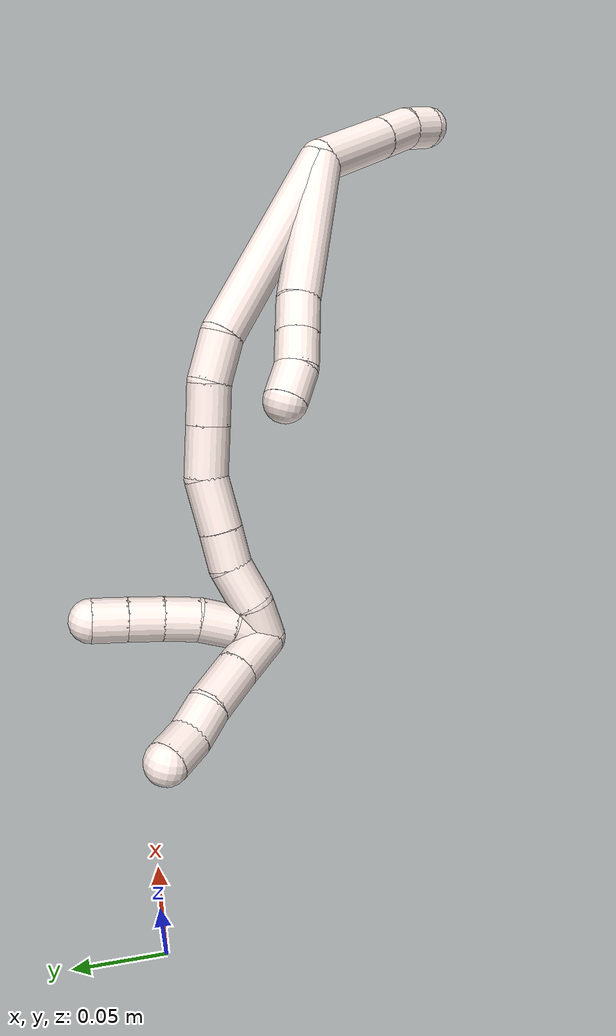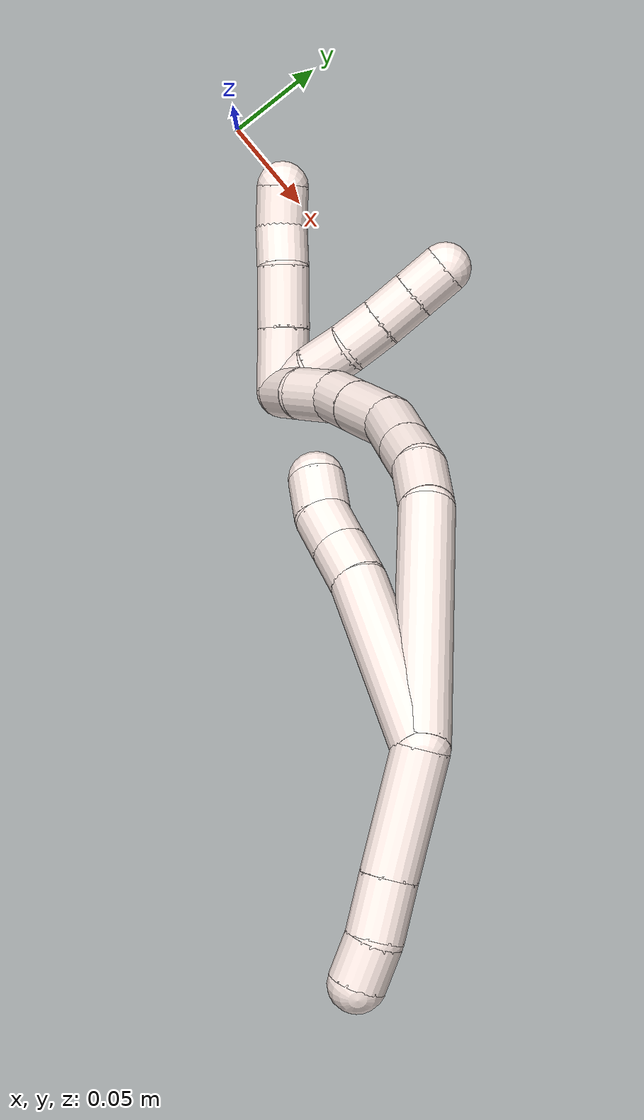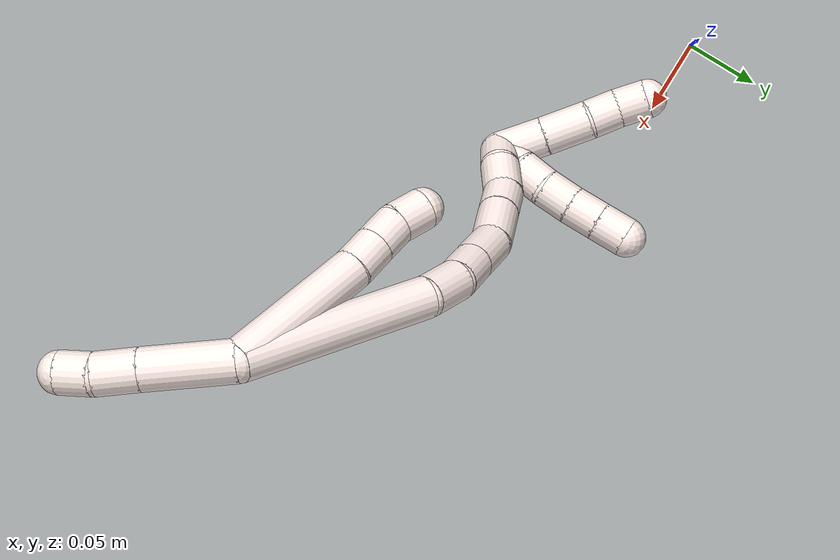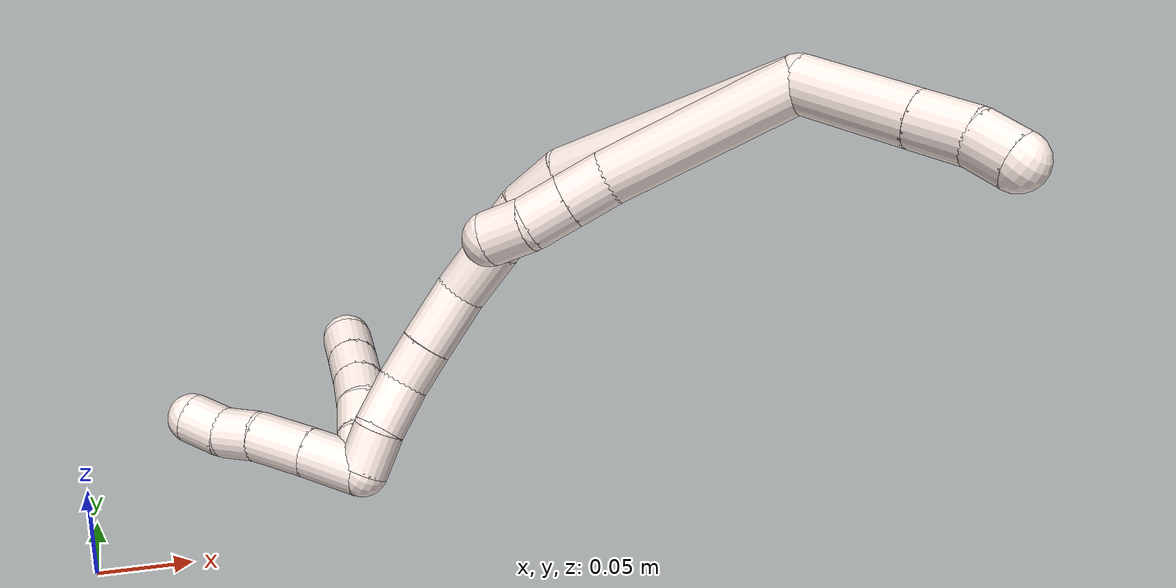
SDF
<sdf version="1.7">
 <world name="default">
  <model name="11">
   <static>0</static>
   <link name="11">
    <collision name="collision-cylinder-e_1_2_8">
     <pose>-0.020715 -0.006088 -0.039116 2.9872 -0.482089 -2.53189</pose>
     <geometry><cylinder><radius>0.0125</radius><length>0.089359</length></cylinder></geometry>
     <surface>
      <friction><ode><mu>1.16</mu><mu2>1.16</mu2><slip1>0</slip1><slip2>0</slip2></ode></friction>
      <contact><ode><kp>1e+06</kp><kd>1</kd><max_vel>0</max_vel><min_depth>0.001</min_depth></ode></contact>
     </surface>
    </collision>
    <visual name="visual-cylinder-e_1_2_8">
     <pose>-0.020715 -0.006088 -0.039116 2.9872 -0.482089 -2.53189</pose>
     <geometry><cylinder><radius>0.0125</radius><length>0.089359</length></cylinder></geometry>
     <material><ambient>1 0.933333 0.909804 1</ambient></material>
    </visual>
    <collision name="collision-cylinder-e_2_8_9">
     <pose>-0.045838 -0.014752 -0.087123 2.85954 -0.444489 -2.01974</pose>
     <geometry><cylinder><radius>0.0125</radius><length>0.020503</length></cylinder></geometry>
     <surface>
      <friction><ode><mu>1.16</mu><mu2>1.16</mu2><slip1>0</slip1><slip2>0</slip2></ode></friction>
      <contact><ode><kp>1e+06</kp><kd>1</kd><max_vel>0</max_vel><min_depth>0.001</min_depth></ode></contact>
     </surface>
    </collision>
    <visual name="visual-cylinder-e_2_8_9">
     <pose>-0.045838 -0.014752 -0.087123 2.85954 -0.444489 -2.01974</pose>
     <geometry><cylinder><radius>0.0125</radius><length>0.020503</length></cylinder></geometry>
     <material><ambient>1 0.933333 0.909804 1</ambient></material>
    </visual>
    <collision name="collision-cylinder-e_3_9_10">
     <pose>-0.054559 -0.019813 -0.104695 2.8628 -0.445511 -2.03243</pose>
     <geometry><cylinder><radius>0.0125</radius><length>0.020017</length></cylinder></geometry>
     <surface>
      <friction><ode><mu>1.16</mu><mu2>1.16</mu2><slip1>0</slip1><slip2>0</slip2></ode></friction>
      <contact><ode><kp>1e+06</kp><kd>1</kd><max_vel>0</max_vel><min_depth>0.001</min_depth></ode></contact>
     </surface>
    </collision>
    <visual name="visual-cylinder-e_3_9_10">
     <pose>-0.054559 -0.019813 -0.104695 2.8628 -0.445511 -2.03243</pose>
     <geometry><cylinder><radius>0.0125</radius><length>0.020017</length></cylinder></geometry>
     <material><ambient>1 0.933333 0.909804 1</ambient></material>
    </visual>
    <collision name="collision-cylinder-e_4_10_6">
     <pose>-0.06399 -0.022112 -0.122037 -3.12004 -0.533711 3.06281</pose>
     <geometry><cylinder><radius>0.0125</radius><length>0.020121</length></cylinder></geometry>
     <surface>
      <friction><ode><mu>1.16</mu><mu2>1.16</mu2><slip1>0</slip1><slip2>0</slip2></ode></friction>
      <contact><ode><kp>1e+06</kp><kd>1</kd><max_vel>0</max_vel><min_depth>0.001</min_depth></ode></contact>
     </surface>
    </collision>
    <visual name="visual-cylinder-e_4_10_6">
     <pose>-0.06399 -0.022112 -0.122037 -3.12004 -0.533711 3.06281</pose>
     <geometry><cylinder><radius>0.0125</radius><length>0.020121</length></cylinder></geometry>
     <material><ambient>1 0.933333 0.909804 1</ambient></material>
    </visual>
    <collision name="collision-cylinder-e_1_2_11">
     <pose>0.020372 -0.013115 0.012197 0.821664 0.849634 0.389131</pose>
     <geometry><cylinder><radius>0.0125</radius><length>0.054251</length></cylinder></geometry>
     <surface>
      <friction><ode><mu>1.16</mu><mu2>1.16</mu2><slip1>0</slip1><slip2>0</slip2></ode></friction>
      <contact><ode><kp>1e+06</kp><kd>1</kd><max_vel>0</max_vel><min_depth>0.001</min_depth></ode></contact>
     </surface>
    </collision>
    <visual name="visual-cylinder-e_1_2_11">
     <pose>0.020372 -0.013115 0.012197 0.821664 0.849634 0.389131</pose>
     <geometry><cylinder><radius>0.0125</radius><length>0.054251</length></cylinder></geometry>
     <material><ambient>1 0.933333 0.909804 1</ambient></material>
    </visual>
    <collision name="collision-cylinder-e_2_11_12">
     <pose>0.050482 -0.032313 0.030195 0.809026 0.8586 0.387061</pose>
     <geometry><cylinder><radius>0.0125</radius><length>0.025727</length></cylinder></geometry>
     <surface>
      <friction><ode><mu>1.16</mu><mu2>1.16</mu2><slip1>0</slip1><slip2>0</slip2></ode></friction>
      <contact><ode><kp>1e+06</kp><kd>1</kd><max_vel>0</max_vel><min_depth>0.001</min_depth></ode></contact>
     </surface>
    </collision>
    <visual name="visual-cylinder-e_2_11_12">
     <pose>0.050482 -0.032313 0.030195 0.809026 0.8586 0.387061</pose>
     <geometry><cylinder><radius>0.0125</radius><length>0.025727</length></cylinder></geometry>
     <material><ambient>1 0.933333 0.909804 1</ambient></material>
    </visual>
    <collision name="collision-cylinder-e_3_12_5">
     <pose>0.067796 -0.044328 0.038757 1.1354 0.858622 0.568099</pose>
     <geometry><cylinder><radius>0.0125</radius><length>0.020022</length></cylinder></geometry>
     <surface>
      <friction><ode><mu>1.16</mu><mu2>1.16</mu2><slip1>0</slip1><slip2>0</slip2></ode></friction>
      <contact><ode><kp>1e+06</kp><kd>1</kd><max_vel>0</max_vel><min_depth>0.001</min_depth></ode></contact>
     </surface>
    </collision>
    <visual name="visual-cylinder-e_3_12_5">
     <pose>0.067796 -0.044328 0.038757 1.1354 0.858622 0.568099</pose>
     <geometry><cylinder><radius>0.0125</radius><length>0.020022</length></cylinder></geometry>
     <material><ambient>1 0.933333 0.909804 1</ambient></material>
    </visual>
    <collision name="collision-cylinder-e_1_2_13">
     <pose>-0.026899 0.011444 -0.053075 -2.92922 -0.459982 2.28719</pose>
     <geometry><cylinder><radius>0.0125</radius><length>0.121185</length></cylinder></geometry>
     <surface>
      <friction><ode><mu>1.16</mu><mu2>1.16</mu2><slip1>0</slip1><slip2>0</slip2></ode></friction>
      <contact><ode><kp>1e+06</kp><kd>1</kd><max_vel>0</max_vel><min_depth>0.001</min_depth></ode></contact>
     </surface>
    </collision>
    <visual name="visual-cylinder-e_1_2_13">
     <pose>-0.026899 0.011444 -0.053075 -2.92922 -0.459982 2.28719</pose>
     <geometry><cylinder><radius>0.0125</radius><length>0.121185</length></cylinder></geometry>
     <material><ambient>1 0.933333 0.909804 1</ambient></material>
    </visual>
    <collision name="collision-cylinder-e_2_13_14">
     <pose>-0.056817 0.022803 -0.119484 3.13518 -0.222635 -3.08425</pose>
     <geometry><cylinder><radius>0.0125</radius><length>0.027343</length></cylinder></geometry>
     <surface>
      <friction><ode><mu>1.16</mu><mu2>1.16</mu2><slip1>0</slip1><slip2>0</slip2></ode></friction>
      <contact><ode><kp>1e+06</kp><kd>1</kd><max_vel>0</max_vel><min_depth>0.001</min_depth></ode></contact>
     </surface>
    </collision>
    <visual name="visual-cylinder-e_2_13_14">
     <pose>-0.056817 0.022803 -0.119484 3.13518 -0.222635 -3.08425</pose>
     <geometry><cylinder><radius>0.0125</radius><length>0.027343</length></cylinder></geometry>
     <material><ambient>1 0.933333 0.909804 1</ambient></material>
    </visual>
    <collision name="collision-cylinder-e_3_14_15">
     <pose>-0.060318 0.020309 -0.144255 2.9341 -0.041249 -0.391166</pose>
     <geometry><cylinder><radius>0.0125</radius><length>0.023396</length></cylinder></geometry>
     <surface>
      <friction><ode><mu>1.16</mu><mu2>1.16</mu2><slip1>0</slip1><slip2>0</slip2></ode></friction>
      <contact><ode><kp>1e+06</kp><kd>1</kd><max_vel>0</max_vel><min_depth>0.001</min_depth></ode></contact>
     </surface>
    </collision>
    <visual name="visual-cylinder-e_3_14_15">
     <pose>-0.060318 0.020309 -0.144255 2.9341 -0.041249 -0.391166</pose>
     <geometry><cylinder><radius>0.0125</radius><length>0.023396</length></cylinder></geometry>
     <material><ambient>1 0.933333 0.909804 1</ambient></material>
    </visual>
    <collision name="collision-cylinder-e_4_15_16">
     <pose>-0.061432 0.015005 -0.170006 2.94191 -0.043218 -0.424972</pose>
     <geometry><cylinder><radius>0.0125</radius><length>0.029235</length></cylinder></geometry>
     <surface>
      <friction><ode><mu>1.16</mu><mu2>1.16</mu2><slip1>0</slip1><slip2>0</slip2></ode></friction>
      <contact><ode><kp>1e+06</kp><kd>1</kd><max_vel>0</max_vel><min_depth>0.001</min_depth></ode></contact>
     </surface>
    </collision>
    <visual name="visual-cylinder-e_4_15_16">
     <pose>-0.061432 0.015005 -0.170006 2.94191 -0.043218 -0.424972</pose>
     <geometry><cylinder><radius>0.0125</radius><length>0.029235</length></cylinder></geometry>
     <material><ambient>1 0.933333 0.909804 1</ambient></material>
    </visual>
    <collision name="collision-cylinder-e_5_16_17">
     <pose>-0.062065 0.004687 -0.197739 2.63643 -0.000129 -0.000501</pose>
     <geometry><cylinder><radius>0.0125</radius><length>0.030668</length></cylinder></geometry>
     <surface>
      <friction><ode><mu>1.16</mu><mu2>1.16</mu2><slip1>0</slip1><slip2>0</slip2></ode></friction>
      <contact><ode><kp>1e+06</kp><kd>1</kd><max_vel>0</max_vel><min_depth>0.001</min_depth></ode></contact>
     </surface>
    </collision>
    <visual name="visual-cylinder-e_5_16_17">
     <pose>-0.062065 0.004687 -0.197739 2.63643 -0.000129 -0.000501</pose>
     <geometry><cylinder><radius>0.0125</radius><length>0.030668</length></cylinder></geometry>
     <material><ambient>1 0.933333 0.909804 1</ambient></material>
    </visual>
    <collision name="collision-cylinder-e_6_17_18">
     <pose>-0.061838 -0.007761 -0.220681 2.65596 0.021286 0.085884</pose>
     <geometry><cylinder><radius>0.0125</radius><length>0.021543</length></cylinder></geometry>
     <surface>
      <friction><ode><mu>1.16</mu><mu2>1.16</mu2><slip1>0</slip1><slip2>0</slip2></ode></friction>
      <contact><ode><kp>1e+06</kp><kd>1</kd><max_vel>0</max_vel><min_depth>0.001</min_depth></ode></contact>
     </surface>
    </collision>
    <visual name="visual-cylinder-e_6_17_18">
     <pose>-0.061838 -0.007761 -0.220681 2.65596 0.021286 0.085884</pose>
     <geometry><cylinder><radius>0.0125</radius><length>0.021543</length></cylinder></geometry>
     <material><ambient>1 0.933333 0.909804 1</ambient></material>
    </visual>
    <collision name="collision-cylinder-e_7_18_19">
     <pose>-0.060721 -0.021162 -0.23936 2.40068 0.071462 0.183558</pose>
     <geometry><cylinder><radius>0.0125</radius><length>0.024878</length></cylinder></geometry>
     <surface>
      <friction><ode><mu>1.16</mu><mu2>1.16</mu2><slip1>0</slip1><slip2>0</slip2></ode></friction>
      <contact><ode><kp>1e+06</kp><kd>1</kd><max_vel>0</max_vel><min_depth>0.001</min_depth></ode></contact>
     </surface>
    </collision>
    <visual name="visual-cylinder-e_7_18_19">
     <pose>-0.060721 -0.021162 -0.23936 2.40068 0.071462 0.183558</pose>
     <geometry><cylinder><radius>0.0125</radius><length>0.024878</length></cylinder></geometry>
     <material><ambient>1 0.933333 0.909804 1</ambient></material>
    </visual>
    <collision name="collision-cylinder-e_8_19_1">
     <pose>-0.05769 -0.03486 -0.257753 2.61883 0.198328 0.712152</pose>
     <geometry><cylinder><radius>0.0125</radius><length>0.021751</length></cylinder></geometry>
     <surface>
      <friction><ode><mu>1.16</mu><mu2>1.16</mu2><slip1>0</slip1><slip2>0</slip2></ode></friction>
      <contact><ode><kp>1e+06</kp><kd>1</kd><max_vel>0</max_vel><min_depth>0.001</min_depth></ode></contact>
     </surface>
    </collision>
    <visual name="visual-cylinder-e_8_19_1">
     <pose>-0.05769 -0.03486 -0.257753 2.61883 0.198328 0.712152</pose>
     <geometry><cylinder><radius>0.0125</radius><length>0.021751</length></cylinder></geometry>
     <material><ambient>1 0.933333 0.909804 1</ambient></material>
    </visual>
    <collision name="collision-cylinder-e_1_1_20">
     <pose>-0.059535 -0.031203 -0.265134 -1.36679 -0.4102 0.335602</pose>
     <geometry><cylinder><radius>0.0125</radius><length>0.02</length></cylinder></geometry>
     <surface>
      <friction><ode><mu>1.16</mu><mu2>1.16</mu2><slip1>0</slip1><slip2>0</slip2></ode></friction>
      <contact><ode><kp>1e+06</kp><kd>1</kd><max_vel>0</max_vel><min_depth>0.001</min_depth></ode></contact>
     </surface>
    </collision>
    <visual name="visual-cylinder-e_1_1_20">
     <pose>-0.059535 -0.031203 -0.265134 -1.36679 -0.4102 0.335602</pose>
     <geometry><cylinder><radius>0.0125</radius><length>0.02</length></cylinder></geometry>
     <material><ambient>1 0.933333 0.909804 1</ambient></material>
    </visual>
    <collision name="collision-cylinder-e_2_20_21">
     <pose>-0.067009 -0.012858 -0.262872 -1.52774 -0.356087 0.341371</pose>
     <geometry><cylinder><radius>0.0125</radius><length>0.02</length></cylinder></geometry>
     <surface>
      <friction><ode><mu>1.16</mu><mu2>1.16</mu2><slip1>0</slip1><slip2>0</slip2></ode></friction>
      <contact><ode><kp>1e+06</kp><kd>1</kd><max_vel>0</max_vel><min_depth>0.001</min_depth></ode></contact>
     </surface>
    </collision>
    <visual name="visual-cylinder-e_2_20_21">
     <pose>-0.067009 -0.012858 -0.262872 -1.52774 -0.356087 0.341371</pose>
     <geometry><cylinder><radius>0.0125</radius><length>0.02</length></cylinder></geometry>
     <material><ambient>1 0.933333 0.909804 1</ambient></material>
    </visual>
    <collision name="collision-cylinder-e_3_21_22">
     <pose>-0.073901 0.005795 -0.263919 -1.72561 -0.34754 0.404512</pose>
     <geometry><cylinder><radius>0.0125</radius><length>0.02</length></cylinder></geometry>
     <surface>
      <friction><ode><mu>1.16</mu><mu2>1.16</mu2><slip1>0</slip1><slip2>0</slip2></ode></friction>
      <contact><ode><kp>1e+06</kp><kd>1</kd><max_vel>0</max_vel><min_depth>0.001</min_depth></ode></contact>
     </surface>
    </collision>
    <visual name="visual-cylinder-e_3_21_22">
     <pose>-0.073901 0.005795 -0.263919 -1.72561 -0.34754 0.404512</pose>
     <geometry><cylinder><radius>0.0125</radius><length>0.02</length></cylinder></geometry>
     <material><ambient>1 0.933333 0.909804 1</ambient></material>
    </visual>
    <collision name="collision-cylinder-e_4_22_23">
     <pose>-0.08108 0.024175 -0.267138 -1.76309 -0.386904 0.466779</pose>
     <geometry><cylinder><radius>0.0125</radius><length>0.02</length></cylinder></geometry>
     <surface>
      <friction><ode><mu>1.16</mu><mu2>1.16</mu2><slip1>0</slip1><slip2>0</slip2></ode></friction>
      <contact><ode><kp>1e+06</kp><kd>1</kd><max_vel>0</max_vel><min_depth>0.001</min_depth></ode></contact>
     </surface>
    </collision>
    <visual name="visual-cylinder-e_4_22_23">
     <pose>-0.08108 0.024175 -0.267138 -1.76309 -0.386904 0.466779</pose>
     <geometry><cylinder><radius>0.0125</radius><length>0.02</length></cylinder></geometry>
     <material><ambient>1 0.933333 0.909804 1</ambient></material>
    </visual>
    <collision name="collision-cylinder-e_5_23_4">
     <pose>-0.088618 0.042334 -0.270801 -1.77656 -0.386014 0.471928</pose>
     <geometry><cylinder><radius>0.0125</radius><length>0.02</length></cylinder></geometry>
     <surface>
      <friction><ode><mu>1.16</mu><mu2>1.16</mu2><slip1>0</slip1><slip2>0</slip2></ode></friction>
      <contact><ode><kp>1e+06</kp><kd>1</kd><max_vel>0</max_vel><min_depth>0.001</min_depth></ode></contact>
     </surface>
    </collision>
    <visual name="visual-cylinder-e_5_23_4">
     <pose>-0.088618 0.042334 -0.270801 -1.77656 -0.386014 0.471928</pose>
     <geometry><cylinder><radius>0.0125</radius><length>0.02</length></cylinder></geometry>
     <material><ambient>1 0.933333 0.909804 1</ambient></material>
    </visual>
    <collision name="collision-cylinder-e_1_1_24">
     <pose>-0.068006 -0.036142 -0.274209 -2.63124 -0.984742 2.23635</pose>
     <geometry><cylinder><radius>0.0125</radius><length>0.029911</length></cylinder></geometry>
     <surface>
      <friction><ode><mu>1.16</mu><mu2>1.16</mu2><slip1>0</slip1><slip2>0</slip2></ode></friction>
      <contact><ode><kp>1e+06</kp><kd>1</kd><max_vel>0</max_vel><min_depth>0.001</min_depth></ode></contact>
     </surface>
    </collision>
    <visual name="visual-cylinder-e_1_1_24">
     <pose>-0.068006 -0.036142 -0.274209 -2.63124 -0.984742 2.23635</pose>
     <geometry><cylinder><radius>0.0125</radius><length>0.029911</length></cylinder></geometry>
     <material><ambient>1 0.933333 0.909804 1</ambient></material>
    </visual>
    <collision name="collision-cylinder-e_2_24_25">
     <pose>-0.093024 -0.02842 -0.288837 -2.68049 -0.988164 2.31968</pose>
     <geometry><cylinder><radius>0.0125</radius><length>0.030078</length></cylinder></geometry>
     <surface>
      <friction><ode><mu>1.16</mu><mu2>1.16</mu2><slip1>0</slip1><slip2>0</slip2></ode></friction>
      <contact><ode><kp>1e+06</kp><kd>1</kd><max_vel>0</max_vel><min_depth>0.001</min_depth></ode></contact>
     </surface>
    </collision>
    <visual name="visual-cylinder-e_2_24_25">
     <pose>-0.093024 -0.02842 -0.288837 -2.68049 -0.988164 2.31968</pose>
     <geometry><cylinder><radius>0.0125</radius><length>0.030078</length></cylinder></geometry>
     <material><ambient>1 0.933333 0.909804 1</ambient></material>
    </visual>
    <collision name="collision-cylinder-e_3_25_26">
     <pose>-0.113076 -0.022853 -0.302602 -2.85316 -0.846642 2.51799</pose>
     <geometry><cylinder><radius>0.0125</radius><length>0.02001</length></cylinder></geometry>
     <surface>
      <friction><ode><mu>1.16</mu><mu2>1.16</mu2><slip1>0</slip1><slip2>0</slip2></ode></friction>
      <contact><ode><kp>1e+06</kp><kd>1</kd><max_vel>0</max_vel><min_depth>0.001</min_depth></ode></contact>
     </surface>
    </collision>
    <visual name="visual-cylinder-e_3_25_26">
     <pose>-0.113076 -0.022853 -0.302602 -2.85316 -0.846642 2.51799</pose>
     <geometry><cylinder><radius>0.0125</radius><length>0.02001</length></cylinder></geometry>
     <material><ambient>1 0.933333 0.909804 1</ambient></material>
    </visual>
    <collision name="collision-cylinder-e_4_26_3">
     <pose>-0.129205 -0.018039 -0.313066 -2.52243 -1.04187 2.12451</pose>
     <geometry><cylinder><radius>0.0125</radius><length>0.020002</length></cylinder></geometry>
     <surface>
      <friction><ode><mu>1.16</mu><mu2>1.16</mu2><slip1>0</slip1><slip2>0</slip2></ode></friction>
      <contact><ode><kp>1e+06</kp><kd>1</kd><max_vel>0</max_vel><min_depth>0.001</min_depth></ode></contact>
     </surface>
    </collision>
    <visual name="visual-cylinder-e_4_26_3">
     <pose>-0.129205 -0.018039 -0.313066 -2.52243 -1.04187 2.12451</pose>
     <geometry><cylinder><radius>0.0125</radius><length>0.020002</length></cylinder></geometry>
     <material><ambient>1 0.933333 0.909804 1</ambient></material>
    </visual>
    <collision name="collision-sphere-3">
     <pose>-0.137839 -0.01511 -0.317176 0 -0 0</pose>
     <geometry><sphere><radius>0.0125</radius></sphere></geometry>
     <surface>
      <friction><ode><mu>1.16</mu><mu2>1.16</mu2><slip1>0</slip1><slip2>0</slip2></ode></friction>
      <contact><ode><kp>1e+06</kp><kd>1</kd><max_vel>0</max_vel><min_depth>0.001</min_depth></ode></contact>
     </surface>
    </collision>
    <visual name="visual-sphere-3">
     <pose>-0.137839 -0.01511 -0.317176 0 -0 0</pose>
     <geometry><sphere><radius>0.0125</radius></sphere></geometry>
     <material><ambient>1 0.933333 0.909804 1</ambient></material>
    </visual>
    <collision name="collision-sphere-26">
     <pose>-0.12057 -0.020968 -0.308957 0 -0 0</pose>
     <geometry><sphere><radius>0.0125</radius></sphere></geometry>
     <surface>
      <friction><ode><mu>1.16</mu><mu2>1.16</mu2><slip1>0</slip1><slip2>0</slip2></ode></friction>
      <contact><ode><kp>1e+06</kp><kd>1</kd><max_vel>0</max_vel><min_depth>0.001</min_depth></ode></contact>
     </surface>
    </collision>
    <visual name="visual-sphere-26">
     <pose>-0.12057 -0.020968 -0.308957 0 -0 0</pose>
     <geometry><sphere><radius>0.0125</radius></sphere></geometry>
     <material><ambient>1 0.933333 0.909804 1</ambient></material>
    </visual>
    <collision name="collision-sphere-25">
     <pose>-0.105582 -0.024738 -0.296248 0 -0 0</pose>
     <geometry><sphere><radius>0.0125</radius></sphere></geometry>
     <surface>
      <friction><ode><mu>1.16</mu><mu2>1.16</mu2><slip1>0</slip1><slip2>0</slip2></ode></friction>
      <contact><ode><kp>1e+06</kp><kd>1</kd><max_vel>0</max_vel><min_depth>0.001</min_depth></ode></contact>
     </surface>
    </collision>
    <visual name="visual-sphere-25">
     <pose>-0.105582 -0.024738 -0.296248 0 -0 0</pose>
     <geometry><sphere><radius>0.0125</radius></sphere></geometry>
     <material><ambient>1 0.933333 0.909804 1</ambient></material>
    </visual>
    <collision name="collision-sphere-24">
     <pose>-0.080466 -0.032102 -0.281426 0 -0 0</pose>
     <geometry><sphere><radius>0.0125</radius></sphere></geometry>
     <surface>
      <friction><ode><mu>1.16</mu><mu2>1.16</mu2><slip1>0</slip1><slip2>0</slip2></ode></friction>
      <contact><ode><kp>1e+06</kp><kd>1</kd><max_vel>0</max_vel><min_depth>0.001</min_depth></ode></contact>
     </surface>
    </collision>
    <visual name="visual-sphere-24">
     <pose>-0.080466 -0.032102 -0.281426 0 -0 0</pose>
     <geometry><sphere><radius>0.0125</radius></sphere></geometry>
     <material><ambient>1 0.933333 0.909804 1</ambient></material>
    </visual>
    <collision name="collision-sphere-4">
     <pose>-0.092383 0.051403 -0.272694 0 -0 0</pose>
     <geometry><sphere><radius>0.0125</radius></sphere></geometry>
     <surface>
      <friction><ode><mu>1.16</mu><mu2>1.16</mu2><slip1>0</slip1><slip2>0</slip2></ode></friction>
      <contact><ode><kp>1e+06</kp><kd>1</kd><max_vel>0</max_vel><min_depth>0.001</min_depth></ode></contact>
     </surface>
    </collision>
    <visual name="visual-sphere-4">
     <pose>-0.092383 0.051403 -0.272694 0 -0 0</pose>
     <geometry><sphere><radius>0.0125</radius></sphere></geometry>
     <material><ambient>1 0.933333 0.909804 1</ambient></material>
    </visual>
    <collision name="collision-sphere-23">
     <pose>-0.084853 0.033265 -0.268908 0 -0 0</pose>
     <geometry><sphere><radius>0.0125</radius></sphere></geometry>
     <surface>
      <friction><ode><mu>1.16</mu><mu2>1.16</mu2><slip1>0</slip1><slip2>0</slip2></ode></friction>
      <contact><ode><kp>1e+06</kp><kd>1</kd><max_vel>0</max_vel><min_depth>0.001</min_depth></ode></contact>
     </surface>
    </collision>
    <visual name="visual-sphere-23">
     <pose>-0.084853 0.033265 -0.268908 0 -0 0</pose>
     <geometry><sphere><radius>0.0125</radius></sphere></geometry>
     <material><ambient>1 0.933333 0.909804 1</ambient></material>
    </visual>
    <collision name="collision-sphere-22">
     <pose>-0.077307 0.015085 -0.265368 0 -0 0</pose>
     <geometry><sphere><radius>0.0125</radius></sphere></geometry>
     <surface>
      <friction><ode><mu>1.16</mu><mu2>1.16</mu2><slip1>0</slip1><slip2>0</slip2></ode></friction>
      <contact><ode><kp>1e+06</kp><kd>1</kd><max_vel>0</max_vel><min_depth>0.001</min_depth></ode></contact>
     </surface>
    </collision>
    <visual name="visual-sphere-22">
     <pose>-0.077307 0.015085 -0.265368 0 -0 0</pose>
     <geometry><sphere><radius>0.0125</radius></sphere></geometry>
     <material><ambient>1 0.933333 0.909804 1</ambient></material>
    </visual>
    <collision name="collision-sphere-21">
     <pose>-0.070495 -0.003494 -0.262469 0 -0 0</pose>
     <geometry><sphere><radius>0.0125</radius></sphere></geometry>
     <surface>
      <friction><ode><mu>1.16</mu><mu2>1.16</mu2><slip1>0</slip1><slip2>0</slip2></ode></friction>
      <contact><ode><kp>1e+06</kp><kd>1</kd><max_vel>0</max_vel><min_depth>0.001</min_depth></ode></contact>
     </surface>
    </collision>
    <visual name="visual-sphere-21">
     <pose>-0.070495 -0.003494 -0.262469 0 -0 0</pose>
     <geometry><sphere><radius>0.0125</radius></sphere></geometry>
     <material><ambient>1 0.933333 0.909804 1</ambient></material>
    </visual>
    <collision name="collision-sphere-20">
     <pose>-0.063523 -0.022222 -0.263276 0 -0 0</pose>
     <geometry><sphere><radius>0.0125</radius></sphere></geometry>
     <surface>
      <friction><ode><mu>1.16</mu><mu2>1.16</mu2><slip1>0</slip1><slip2>0</slip2></ode></friction>
      <contact><ode><kp>1e+06</kp><kd>1</kd><max_vel>0</max_vel><min_depth>0.001</min_depth></ode></contact>
     </surface>
    </collision>
    <visual name="visual-sphere-20">
     <pose>-0.063523 -0.022222 -0.263276 0 -0 0</pose>
     <geometry><sphere><radius>0.0125</radius></sphere></geometry>
     <material><ambient>1 0.933333 0.909804 1</ambient></material>
    </visual>
    <collision name="collision-sphere-11">
     <pose>0.040745 -0.02623 0.024393 0 -0 0</pose>
     <geometry><sphere><radius>0.0125</radius></sphere></geometry>
     <surface>
      <friction><ode><mu>1.16</mu><mu2>1.16</mu2><slip1>0</slip1><slip2>0</slip2></ode></friction>
      <contact><ode><kp>1e+06</kp><kd>1</kd><max_vel>0</max_vel><min_depth>0.001</min_depth></ode></contact>
     </surface>
    </collision>
    <visual name="visual-sphere-11">
     <pose>0.040745 -0.02623 0.024393 0 -0 0</pose>
     <geometry><sphere><radius>0.0125</radius></sphere></geometry>
     <material><ambient>1 0.933333 0.909804 1</ambient></material>
    </visual>
    <collision name="collision-sphere-6">
     <pose>-0.069108 -0.021926 -0.130696 0 -0 0</pose>
     <geometry><sphere><radius>0.0125</radius></sphere></geometry>
     <surface>
      <friction><ode><mu>1.16</mu><mu2>1.16</mu2><slip1>0</slip1><slip2>0</slip2></ode></friction>
      <contact><ode><kp>1e+06</kp><kd>1</kd><max_vel>0</max_vel><min_depth>0.001</min_depth></ode></contact>
     </surface>
    </collision>
    <visual name="visual-sphere-6">
     <pose>-0.069108 -0.021926 -0.130696 0 -0 0</pose>
     <geometry><sphere><radius>0.0125</radius></sphere></geometry>
     <material><ambient>1 0.933333 0.909804 1</ambient></material>
    </visual>
    <collision name="collision-sphere-10">
     <pose>-0.058872 -0.022299 -0.113378 0 -0 0</pose>
     <geometry><sphere><radius>0.0125</radius></sphere></geometry>
     <surface>
      <friction><ode><mu>1.16</mu><mu2>1.16</mu2><slip1>0</slip1><slip2>0</slip2></ode></friction>
      <contact><ode><kp>1e+06</kp><kd>1</kd><max_vel>0</max_vel><min_depth>0.001</min_depth></ode></contact>
     </surface>
    </collision>
    <visual name="visual-sphere-10">
     <pose>-0.058872 -0.022299 -0.113378 0 -0 0</pose>
     <geometry><sphere><radius>0.0125</radius></sphere></geometry>
     <material><ambient>1 0.933333 0.909804 1</ambient></material>
    </visual>
    <collision name="collision-sphere-9">
     <pose>-0.050246 -0.017328 -0.096012 0 -0 0</pose>
     <geometry><sphere><radius>0.0125</radius></sphere></geometry>
     <surface>
      <friction><ode><mu>1.16</mu><mu2>1.16</mu2><slip1>0</slip1><slip2>0</slip2></ode></friction>
      <contact><ode><kp>1e+06</kp><kd>1</kd><max_vel>0</max_vel><min_depth>0.001</min_depth></ode></contact>
     </surface>
    </collision>
    <visual name="visual-sphere-9">
     <pose>-0.050246 -0.017328 -0.096012 0 -0 0</pose>
     <geometry><sphere><radius>0.0125</radius></sphere></geometry>
     <material><ambient>1 0.933333 0.909804 1</ambient></material>
    </visual>
    <collision name="collision-sphere-2">
     <geometry><sphere><radius>0.0125</radius></sphere></geometry>
     <surface>
      <friction><ode><mu>1.16</mu><mu2>1.16</mu2><slip1>0</slip1><slip2>0</slip2></ode></friction>
      <contact><ode><kp>1e+06</kp><kd>1</kd><max_vel>0</max_vel><min_depth>0.001</min_depth></ode></contact>
     </surface>
    </collision>
    <visual name="visual-sphere-2">
     <geometry><sphere><radius>0.0125</radius></sphere></geometry>
     <material><ambient>1 0.933333 0.909804 1</ambient></material>
    </visual>
    <collision name="collision-sphere-19">
     <pose>-0.059832 -0.029536 -0.248515 0 -0 0</pose>
     <geometry><sphere><radius>0.0125</radius></sphere></geometry>
     <surface>
      <friction><ode><mu>1.16</mu><mu2>1.16</mu2><slip1>0</slip1><slip2>0</slip2></ode></friction>
      <contact><ode><kp>1e+06</kp><kd>1</kd><max_vel>0</max_vel><min_depth>0.001</min_depth></ode></contact>
     </surface>
    </collision>
    <visual name="visual-sphere-19">
     <pose>-0.059832 -0.029536 -0.248515 0 -0 0</pose>
     <geometry><sphere><radius>0.0125</radius></sphere></geometry>
     <material><ambient>1 0.933333 0.909804 1</ambient></material>
    </visual>
    <collision name="collision-sphere-8">
     <pose>-0.04143 -0.012176 -0.078233 0 -0 0</pose>
     <geometry><sphere><radius>0.0125</radius></sphere></geometry>
     <surface>
      <friction><ode><mu>1.16</mu><mu2>1.16</mu2><slip1>0</slip1><slip2>0</slip2></ode></friction>
      <contact><ode><kp>1e+06</kp><kd>1</kd><max_vel>0</max_vel><min_depth>0.001</min_depth></ode></contact>
     </surface>
    </collision>
    <visual name="visual-sphere-8">
     <pose>-0.04143 -0.012176 -0.078233 0 -0 0</pose>
     <geometry><sphere><radius>0.0125</radius></sphere></geometry>
     <material><ambient>1 0.933333 0.909804 1</ambient></material>
    </visual>
    <collision name="collision-sphere-12">
     <pose>0.060218 -0.038396 0.035997 0 -0 0</pose>
     <geometry><sphere><radius>0.0125</radius></sphere></geometry>
     <surface>
      <friction><ode><mu>1.16</mu><mu2>1.16</mu2><slip1>0</slip1><slip2>0</slip2></ode></friction>
      <contact><ode><kp>1e+06</kp><kd>1</kd><max_vel>0</max_vel><min_depth>0.001</min_depth></ode></contact>
     </surface>
    </collision>
    <visual name="visual-sphere-12">
     <pose>0.060218 -0.038396 0.035997 0 -0 0</pose>
     <geometry><sphere><radius>0.0125</radius></sphere></geometry>
     <material><ambient>1 0.933333 0.909804 1</ambient></material>
    </visual>
    <collision name="collision-sphere-5">
     <pose>0.075374 -0.050259 0.041516 0 -0 0</pose>
     <geometry><sphere><radius>0.0125</radius></sphere></geometry>
     <surface>
      <friction><ode><mu>1.16</mu><mu2>1.16</mu2><slip1>0</slip1><slip2>0</slip2></ode></friction>
      <contact><ode><kp>1e+06</kp><kd>1</kd><max_vel>0</max_vel><min_depth>0.001</min_depth></ode></contact>
     </surface>
    </collision>
    <visual name="visual-sphere-5">
     <pose>0.075374 -0.050259 0.041516 0 -0 0</pose>
     <geometry><sphere><radius>0.0125</radius></sphere></geometry>
     <material><ambient>1 0.933333 0.909804 1</ambient></material>
    </visual>
    <collision name="collision-sphere-13">
     <pose>-0.053798 0.022888 -0.10615 0 -0 0</pose>
     <geometry><sphere><radius>0.0125</radius></sphere></geometry>
     <surface>
      <friction><ode><mu>1.16</mu><mu2>1.16</mu2><slip1>0</slip1><slip2>0</slip2></ode></friction>
      <contact><ode><kp>1e+06</kp><kd>1</kd><max_vel>0</max_vel><min_depth>0.001</min_depth></ode></contact>
     </surface>
    </collision>
    <visual name="visual-sphere-13">
     <pose>-0.053798 0.022888 -0.10615 0 -0 0</pose>
     <geometry><sphere><radius>0.0125</radius></sphere></geometry>
     <material><ambient>1 0.933333 0.909804 1</ambient></material>
    </visual>
    <collision name="collision-sphere-14">
     <pose>-0.059835 0.022717 -0.132818 0 -0 0</pose>
     <geometry><sphere><radius>0.0125</radius></sphere></geometry>
     <surface>
      <friction><ode><mu>1.16</mu><mu2>1.16</mu2><slip1>0</slip1><slip2>0</slip2></ode></friction>
      <contact><ode><kp>1e+06</kp><kd>1</kd><max_vel>0</max_vel><min_depth>0.001</min_depth></ode></contact>
     </surface>
    </collision>
    <visual name="visual-sphere-14">
     <pose>-0.059835 0.022717 -0.132818 0 -0 0</pose>
     <geometry><sphere><radius>0.0125</radius></sphere></geometry>
     <material><ambient>1 0.933333 0.909804 1</ambient></material>
    </visual>
    <collision name="collision-sphere-15">
     <pose>-0.0608 0.017902 -0.155692 0 -0 0</pose>
     <geometry><sphere><radius>0.0125</radius></sphere></geometry>
     <surface>
      <friction><ode><mu>1.16</mu><mu2>1.16</mu2><slip1>0</slip1><slip2>0</slip2></ode></friction>
      <contact><ode><kp>1e+06</kp><kd>1</kd><max_vel>0</max_vel><min_depth>0.001</min_depth></ode></contact>
     </surface>
    </collision>
    <visual name="visual-sphere-15">
     <pose>-0.0608 0.017902 -0.155692 0 -0 0</pose>
     <geometry><sphere><radius>0.0125</radius></sphere></geometry>
     <material><ambient>1 0.933333 0.909804 1</ambient></material>
    </visual>
    <collision name="collision-sphere-16">
     <pose>-0.062063 0.012108 -0.18432 0 -0 0</pose>
     <geometry><sphere><radius>0.0125</radius></sphere></geometry>
     <surface>
      <friction><ode><mu>1.16</mu><mu2>1.16</mu2><slip1>0</slip1><slip2>0</slip2></ode></friction>
      <contact><ode><kp>1e+06</kp><kd>1</kd><max_vel>0</max_vel><min_depth>0.001</min_depth></ode></contact>
     </surface>
    </collision>
    <visual name="visual-sphere-16">
     <pose>-0.062063 0.012108 -0.18432 0 -0 0</pose>
     <geometry><sphere><radius>0.0125</radius></sphere></geometry>
     <material><ambient>1 0.933333 0.909804 1</ambient></material>
    </visual>
    <collision name="collision-sphere-17">
     <pose>-0.062067 -0.002734 -0.211157 0 -0 0</pose>
     <geometry><sphere><radius>0.0125</radius></sphere></geometry>
     <surface>
      <friction><ode><mu>1.16</mu><mu2>1.16</mu2><slip1>0</slip1><slip2>0</slip2></ode></friction>
      <contact><ode><kp>1e+06</kp><kd>1</kd><max_vel>0</max_vel><min_depth>0.001</min_depth></ode></contact>
     </surface>
    </collision>
    <visual name="visual-sphere-17">
     <pose>-0.062067 -0.002734 -0.211157 0 -0 0</pose>
     <geometry><sphere><radius>0.0125</radius></sphere></geometry>
     <material><ambient>1 0.933333 0.909804 1</ambient></material>
    </visual>
    <collision name="collision-sphere-18">
     <pose>-0.061609 -0.012787 -0.230205 0 -0 0</pose>
     <geometry><sphere><radius>0.0125</radius></sphere></geometry>
     <surface>
      <friction><ode><mu>1.16</mu><mu2>1.16</mu2><slip1>0</slip1><slip2>0</slip2></ode></friction>
      <contact><ode><kp>1e+06</kp><kd>1</kd><max_vel>0</max_vel><min_depth>0.001</min_depth></ode></contact>
     </surface>
    </collision>
    <visual name="visual-sphere-18">
     <pose>-0.061609 -0.012787 -0.230205 0 -0 0</pose>
     <geometry><sphere><radius>0.0125</radius></sphere></geometry>
     <material><ambient>1 0.933333 0.909804 1</ambient></material>
    </visual>
    <collision name="collision-sphere-1">
     <pose>-0.055547 -0.040183 -0.266991 0 -0 0</pose>
     <geometry><sphere><radius>0.0125</radius></sphere></geometry>
     <surface>
      <friction><ode><mu>1.16</mu><mu2>1.16</mu2><slip1>0</slip1><slip2>0</slip2></ode></friction>
      <contact><ode><kp>1e+06</kp><kd>1</kd><max_vel>0</max_vel><min_depth>0.001</min_depth></ode></contact>
     </surface>
    </collision>
    <visual name="visual-sphere-1">
     <pose>-0.055547 -0.040183 -0.266991 0 -0 0</pose>
     <geometry><sphere><radius>0.0125</radius></sphere></geometry>
     <material><ambient>1 0.933333 0.909804 1</ambient></material>
    </visual>
    <inertial>
     <pose>-0.04335 -0.006255 -0.138461 0 -0 0</pose>
     <mass>0.75</mass>
     <inertia><ixx>-4.6e-05</ixx><ixy>0</ixy><ixz>0</ixz><iyy>0.000262</iyy><iyz>0</iyz><izz>5e-05</izz></inertia>
    </inertial>
   </link>
   <pose>0.312196 -0.138611 0.287313 0.134484 0.559352 -0.363568</pose>
  </model>
 </world>
</sdf>
